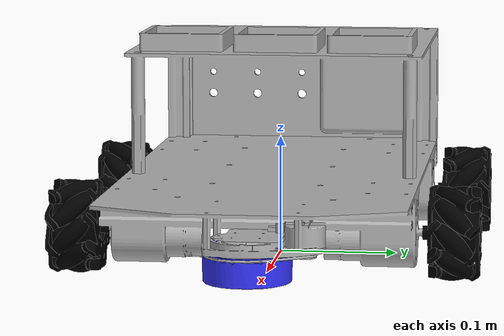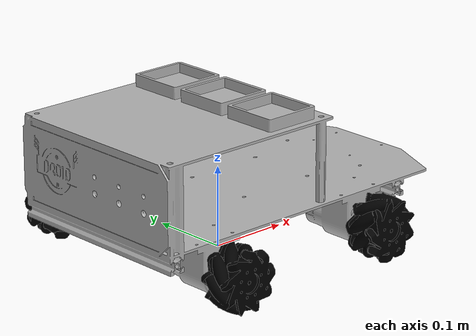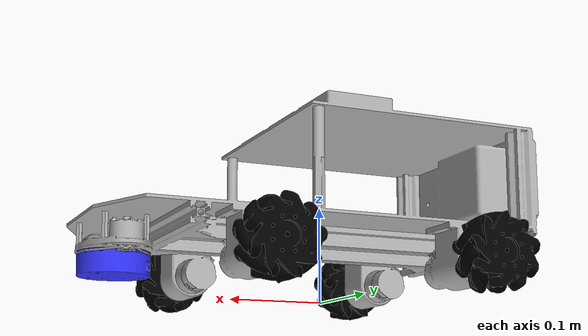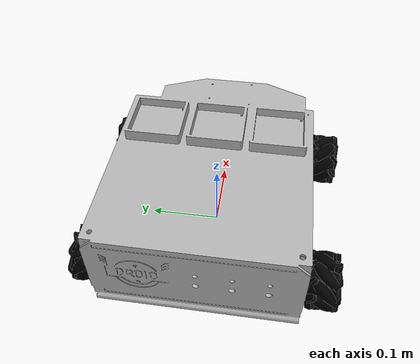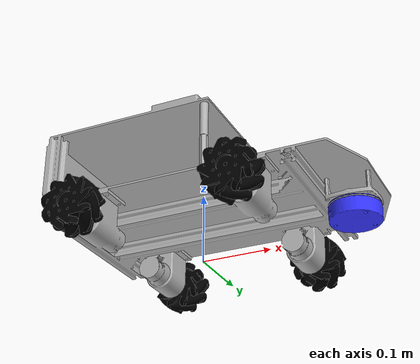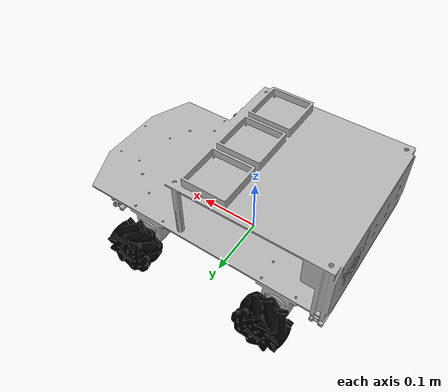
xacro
<?xml version="1.0" ?>
<robot xmlns:xacro="http://www.ros.org/wiki/xacro">

<xacro:include filename="$(find salamander_bot)/description/colors.xacro" />
<xacro:include filename="$(find salamander_bot)/description/salamander_bot.ros2control" />
<xacro:include filename="$(find salamander_bot)/description/salamander_bot.gazebo" />

<link name="base_link"></link>

<link name="chassis">
  <inertial>
    <origin xyz="-0.031027251343893784 0.006588573186617724 0.08110908537527221" rpy="0 0 0"/>
    <mass value="4.3632165889636445"/>
    <inertia ixx="0.042227" iyy="0.075384" izz="0.090994" ixy="0.004338" iyz="-0.000531" ixz="0.008602"/>
  </inertial>
  <visual>
    <origin xyz="0 0 0" rpy="0 0 0"/>
    <geometry>
      <mesh filename="file://$(find salamander_bot)/meshes/base_link.stl" scale="0.001 0.001 0.001"/>
    </geometry>
    <material name="silver"/>
  </visual>
  <collision>
    <origin xyz="0 0 0" rpy="0 0 0"/>
    <geometry>
      <mesh filename="file://$(find salamander_bot)/meshes/base_link.stl" scale="0.001 0.001 0.001"/>
    </geometry>
  </collision>
</link>

<link name="wheel_lf_1">
  <inertial>
    <origin xyz="6.732011406662686e-09 0.013415334217220576 -2.2496351934075953e-09" rpy="0 0 0"/>
    <mass value="0.2163222450067834"/>
    <inertia ixx="8.8e-05" iyy="0.00011" izz="8.8e-05" ixy="0.0" iyz="-0.0" ixz="0.0"/>
  </inertial>
  <visual>
    <origin xyz="-0.11315 -0.142 -0.03865" rpy="0 0 0"/>
    <geometry>
      <mesh filename="file://$(find salamander_bot)/meshes/wheel_lf_1.stl" scale="0.001 0.001 0.001"/>
    </geometry>
    <material name="black"/>
  </visual>
  <collision>
    <origin xyz="-0.11315 -0.142 -0.03865" rpy="0 0 0"/>
    <geometry>
      <mesh filename="file://$(find salamander_bot)/meshes/wheel_lf_1.stl" scale="0.001 0.001 0.001"/>
    </geometry>
  </collision>
</link>

<link name="wheel_lb_1">
  <inertial>
    <origin xyz="3.7014641768307044e-09 0.01344735270580652 -3.504848446189701e-09" rpy="0 0 0"/>
    <mass value="0.21632224500656735"/>
    <inertia ixx="8.8e-05" iyy="0.00011" izz="8.8e-05" ixy="-0.0" iyz="-0.0" ixz="0.0"/>
  </inertial>
  <visual>
    <origin xyz="0.11315 -0.142 -0.03865" rpy="0 0 0"/>
    <geometry>
      <mesh filename="file://$(find salamander_bot)/meshes/wheel_lb_1.stl" scale="0.001 0.001 0.001"/>
    </geometry>
    <material name="black"/>
  </visual>
  <collision>
    <origin xyz="0.11315 -0.142 -0.03865" rpy="0 0 0"/>
    <geometry>
      <mesh filename="file://$(find salamander_bot)/meshes/wheel_lb_1.stl" scale="0.001 0.001 0.001"/>
    </geometry>
  </collision>
</link>

<link name="wheel_rf_1">
  <inertial>
    <origin xyz="6.7541714166008404e-09 -0.013367918230393266 -2.072007607156756e-09" rpy="0 0 0"/>
    <mass value="0.21632224116980406"/>
    <inertia ixx="8.8e-05" iyy="0.00011" izz="8.8e-05" ixy="-0.0" iyz="0.0" ixz="0.0"/>
  </inertial>
  <visual>
    <origin xyz="-0.11315 0.142 -0.03865" rpy="0 0 0"/>
    <geometry>
      <mesh filename="file://$(find salamander_bot)/meshes/wheel_rf_1.stl" scale="0.001 0.001 0.001"/>
    </geometry>
    <material name="black"/>
  </visual>
  <collision>
    <origin xyz="-0.11315 0.142 -0.03865" rpy="0 0 0"/>
    <geometry>
      <mesh filename="file://$(find salamander_bot)/meshes/wheel_rf_1.stl" scale="0.001 0.001 0.001"/>
    </geometry>
  </collision>
</link>

<link name="wheel_rb_1">
  <inertial>
    <origin xyz="3.723448854797695e-09 -0.013447353552784869 -3.327369837990979e-09" rpy="0 0 0"/>
    <mass value="0.21632224116958718"/>
    <inertia ixx="8.8e-05" iyy="0.00011" izz="8.8e-05" ixy="0.0" iyz="0.0" ixz="0.0"/>
  </inertial>
  <visual>
    <origin xyz="0.11315 0.142 -0.03865" rpy="0 0 0"/>
    <geometry>
      <mesh filename="file://$(find salamander_bot)/meshes/wheel_rb_1.stl" scale="0.001 0.001 0.001"/>
    </geometry>
    <material name="black"/>
  </visual>
  <collision>
    <origin xyz="0.11315 0.142 -0.03865" rpy="0 0 0"/>
    <geometry>
      <mesh filename="file://$(find salamander_bot)/meshes/wheel_rb_1.stl" scale="0.001 0.001 0.001"/>
    </geometry>
  </collision>
</link>

<link name="rplidar_a1m8_1">
  <inertial>
    <origin xyz="0.0008205477062011579 0.0006535114455110541 0.017493457828168968" rpy="0 0 0"/>
    <mass value="0.036021408390687064"/>
    <inertia ixx="1.5e-05" iyy="1.2e-05" izz="2.3e-05" ixy="0.0" iyz="-0.0" ixz="-0.0"/>
  </inertial>
  <visual>
    <origin xyz="0.077204 0.064205 -0.2095" rpy="0 0 0"/>
    <geometry>
      <mesh filename="file://$(find salamander_bot)/meshes/rplidar_a1m8_1.stl" scale="0.001 0.001 0.001"/>
    </geometry>
    <material name="blue"/>
  </visual>
  <collision>
    <origin xyz="0.077204 0.064205 -0.2095" rpy="0 0 0"/>
    <geometry>
      <mesh filename="file://$(find salamander_bot)/meshes/rplidar_a1m8_1.stl" scale="0.001 0.001 0.001"/>
    </geometry>
  </collision>
</link>

<joint name="chassis_joint" type="fixed">
  <parent link="base_link"/>
  <child link="chassis"/>
  <origin xyz="0.0 0.0 0.0"/>
</joint>

<joint name="wheel_lf_joint" type="continuous">
  <origin xyz="0.11315 0.142 0.03865" rpy="0 0 0"/>
  <parent link="base_link"/>
  <child link="wheel_lf_1"/>
  <axis xyz="0.0 1.0 0.0"/>
</joint>

<joint name="wheel_lb_joint" type="continuous">
  <origin xyz="-0.11315 0.142 0.03865" rpy="0 0 0"/>
  <parent link="base_link"/>
  <child link="wheel_lb_1"/>
  <axis xyz="0.0 1.0 0.0"/>
</joint>

<joint name="wheel_rf_joint" type="continuous">
  <origin xyz="0.11315 -0.142 0.03865" rpy="0 0 0"/>
  <parent link="base_link"/>
  <child link="wheel_rf_1"/>
  <axis xyz="0.0 1.0 0.0"/>
</joint>

<joint name="wheel_rb_joint" type="continuous">
  <origin xyz="-0.11315 -0.142 0.03865" rpy="0 0 0"/>
  <parent link="base_link"/>
  <child link="wheel_rb_1"/>
  <axis xyz="0.0 1.0 0.0"/>
</joint>

<joint name="rplidar_a1m8_joint" type="fixed">
  <origin xyz="-0.077204 -0.064205 0.2095" rpy="0 0 0"/>
  <parent link="base_link"/>
  <child link="rplidar_a1m8_1"/>
</joint>

</robot>

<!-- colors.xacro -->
<robot xmlns:xacro="http://www.ros.org/wiki/xacro">

    <material name="white">
        <color rgba="1.0 1.0 1.0 1.0"/>
    </material>

    <material name="orange">
        <color rgba="1.0 0.3 0.1 1.0"/>
    </material>

    <material name="blue">
        <color rgba="0.2 0.2 1.0 1.0"/>
    </material>

    <material name="black">
        <color rgba="0.0 0.0 0.0 1.0"/>
    </material>

    <material name="silver">
        <color rgba="0.7 0.7 0.7 1.0"/>
    </material>

</robot>

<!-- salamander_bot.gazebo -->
<robot xmlns:xacro="http://www.ros.org/wiki/xacro" >

<xacro:property name="body_color" value="Gazebo/Silver" />

<gazebo reference="base_link">
  <material>${body_color}</material>
  <mu1>0.2</mu1>
  <mu2>0.2</mu2>
  <self_collide>true</self_collide>
  <gravity>true</gravity>
</gazebo>

<gazebo reference="wheel_lf_1">
  <material>${body_color}</material>
  <mu1>0.2</mu1>
  <mu2>0.2</mu2>
  <self_collide>true</self_collide>
</gazebo>

<gazebo reference="wheel_lb_1">
  <material>${body_color}</material>
  <mu1>0.2</mu1>
  <mu2>0.2</mu2>
  <self_collide>true</self_collide>
</gazebo>

<gazebo reference="wheel_rf_1">
  <material>${body_color}</material>
  <mu1>0.2</mu1>
  <mu2>0.2</mu2>
  <self_collide>true</self_collide>
</gazebo>

<gazebo reference="wheel_rb_1">
  <material>${body_color}</material>
  <mu1>0.2</mu1>
  <mu2>0.2</mu2>
  <self_collide>true</self_collide>
</gazebo>

<gazebo reference="rplidar_a1m8_1">
  <material>${body_color}</material>
  <mu1>0.2</mu1>
  <mu2>0.2</mu2>
  <self_collide>true</self_collide>
</gazebo>

</robot>
